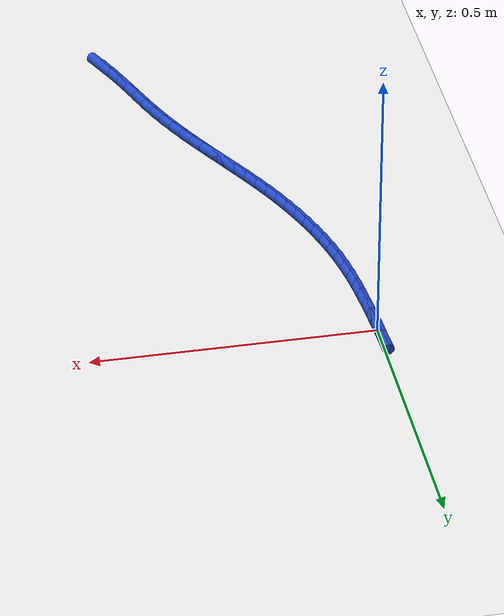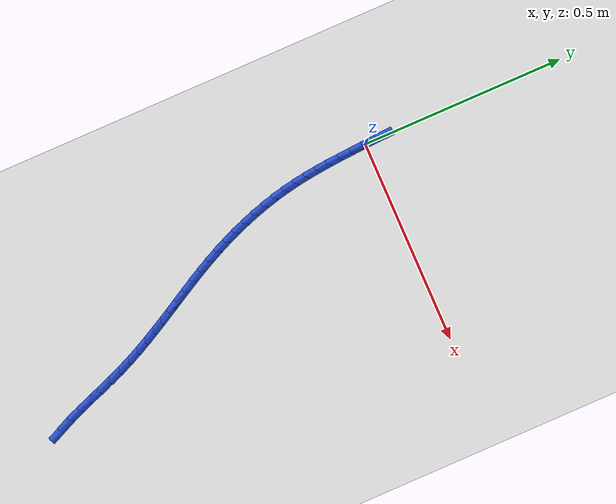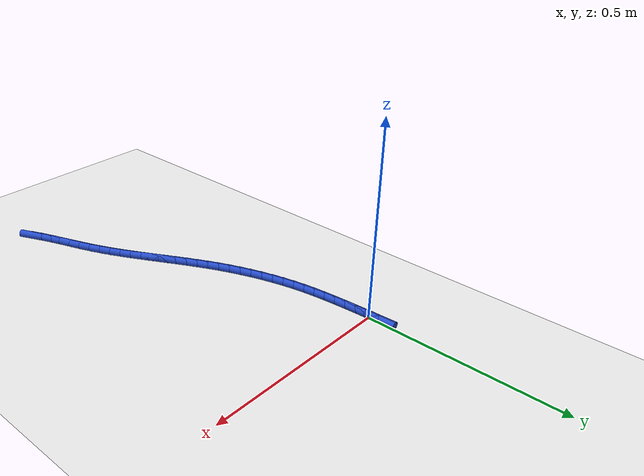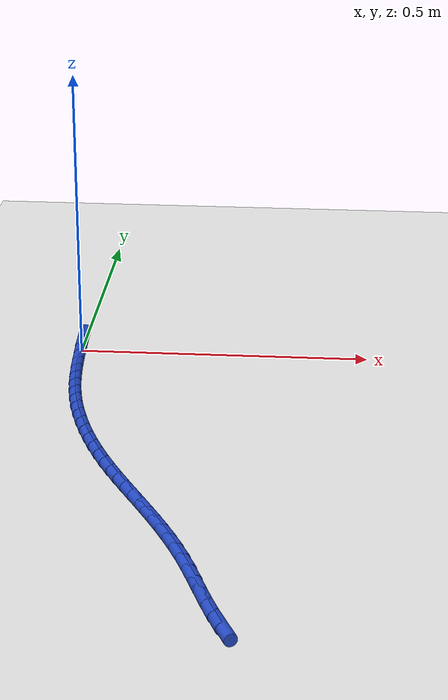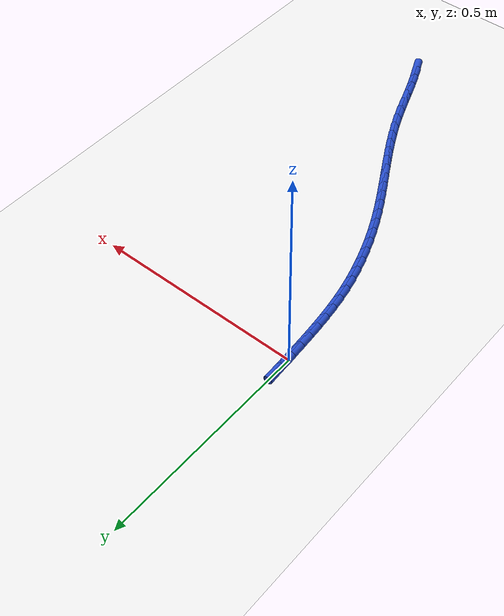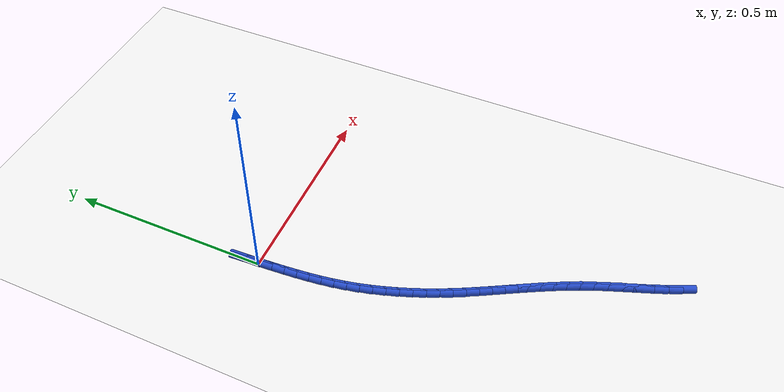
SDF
<sdf version="1.6">
 <world name="default">
  <model name="ground_plane">
   <static>1</static>
   <link name="link">
    <collision name="collision">
     <geometry><plane><normal>0 0 1</normal><size>100 100</size></plane></geometry>
     <surface><friction><ode><mu>100</mu><mu2>50</mu2></ode></friction></surface>
    </collision>
    <visual name="visual">
     <cast_shadows>0</cast_shadows>
     <geometry><plane><normal>0 0 1</normal><size>100 100</size></plane></geometry>
     <material>
      <script><uri>file://media/materials/scripts/gazebo.material</uri><name>Gazebo/WhiteGlow</name></script>
     </material>
    </visual>
   </link>
  </model>
  <model name="line">
   <link name="link_0">
    <pose>1.6479873021779667e-17 -1.3877787807814457e-17 0.01 0 1.57 -1.5169289037299356</pose>
    <collision name="collision">
     <geometry><cylinder><radius>0.01</radius><length>0.08</length></cylinder></geometry>
    </collision>
    <visual name="visual">
     <material>
      <script><name>Gazebo/Blue</name><uri>file://media/materials/scripts/gazebo.material</uri></script>
     </material>
     <geometry><cylinder><radius>0.01</radius><length>0.08</length></cylinder></geometry>
    </visual>
   </link>
   <link name="link_1">
    <pose>-0.0017081246326185085 0.03167911255385943 0.01 0 1.57 -1.5366417405871349</pose>
    <collision name="collision">
     <geometry><cylinder><radius>0.01</radius><length>0.08</length></cylinder></geometry>
    </collision>
    <visual name="visual">
     <material>
      <script><name>Gazebo/Blue</name><uri>file://media/materials/scripts/gazebo.material</uri></script>
     </material>
     <geometry><cylinder><radius>0.01</radius><length>0.08</length></cylinder></geometry>
    </visual>
   </link>
   <link name="link_258">
    <pose>0.3282250796062322 -0.9181112037731878 0.01 0 1.57 -1.1462513492735864</pose>
    <collision name="collision">
     <geometry><cylinder><radius>0.01</radius><length>0.08</length></cylinder></geometry>
    </collision>
    <visual name="visual">
     <material>
      <script><name>Gazebo/Blue</name><uri>file://media/materials/scripts/gazebo.material</uri></script>
     </material>
     <geometry><cylinder><radius>0.01</radius><length>0.08</length></cylinder></geometry>
    </visual>
   </link>
   <link name="link_259">
    <pose>0.31523423611256085 -0.8893726274492675 0.01 0 1.57 -1.1841315422363174</pose>
    <collision name="collision">
     <geometry><cylinder><radius>0.01</radius><length>0.08</length></cylinder></geometry>
    </collision>
    <visual name="visual">
     <material>
      <script><name>Gazebo/Blue</name><uri>file://media/materials/scripts/gazebo.material</uri></script>
     </material>
     <geometry><cylinder><radius>0.01</radius><length>0.08</length></cylinder></geometry>
    </visual>
   </link>
   <link name="link_260">
    <pose>0.30305319556781624 -0.8594556509959788 0.01 0 1.57 -1.2065340801904139</pose>
    <collision name="collision">
     <geometry><cylinder><radius>0.01</radius><length>0.08</length></cylinder></geometry>
    </collision>
    <visual name="visual">
     <material>
      <script><name>Gazebo/Blue</name><uri>file://media/materials/scripts/gazebo.material</uri></script>
     </material>
     <geometry><cylinder><radius>0.01</radius><length>0.08</length></cylinder></geometry>
    </visual>
   </link>
   <link name="link_261">
    <pose>0.29136741081540224 -0.828806568265239 0.01 0 1.57 -1.2147351950602387</pose>
    <collision name="collision">
     <geometry><cylinder><radius>0.01</radius><length>0.08</length></cylinder></geometry>
    </collision>
    <visual name="visual">
     <material>
      <script><name>Gazebo/Blue</name><uri>file://media/materials/scripts/gazebo.material</uri></script>
     </material>
     <geometry><cylinder><radius>0.01</radius><length>0.08</length></cylinder></geometry>
    </visual>
   </link>
   <link name="link_262">
    <pose>0.2798623346987227 -0.7978716731089661 0.01 0 1.57 -1.2092222411758444</pose>
    <collision name="collision">
     <geometry><cylinder><radius>0.01</radius><length>0.08</length></cylinder></geometry>
    </collision>
    <visual name="visual">
     <material>
      <script><name>Gazebo/Blue</name><uri>file://media/materials/scripts/gazebo.material</uri></script>
     </material>
     <geometry><cylinder><radius>0.01</radius><length>0.08</length></cylinder></geometry>
    </visual>
   </link>
   <link name="link_263">
    <pose>0.26822342006118155 -0.7670972593790777 0.01 0 1.57 -1.1897139789515683</pose>
    <collision name="collision">
     <geometry><cylinder><radius>0.01</radius><length>0.08</length></cylinder></geometry>
    </collision>
    <visual name="visual">
     <material>
      <script><name>Gazebo/Blue</name><uri>file://media/materials/scripts/gazebo.material</uri></script>
     </material>
     <geometry><cylinder><radius>0.01</radius><length>0.08</length></cylinder></geometry>
    </visual>
   </link>
   <link name="link_264">
    <pose>0.256136174693886 -0.7369295471641016 0.01 0 1.57 -1.1594302251223996</pose>
    <collision name="collision">
     <geometry><cylinder><radius>0.01</radius><length>0.08</length></cylinder></geometry>
    </collision>
    <visual name="visual">
     <material>
      <script><name>Gazebo/Blue</name><uri>file://media/materials/scripts/gazebo.material</uri></script>
     </material>
     <geometry><cylinder><radius>0.01</radius><length>0.08</length></cylinder></geometry>
    </visual>
   </link>
   <link name="link_265">
    <pose>0.24337979485086572 -0.707688986444531 0.01 0 1.57 -1.1307475955385966</pose>
    <collision name="collision">
     <geometry><cylinder><radius>0.01</radius><length>0.08</length></cylinder></geometry>
    </collision>
    <visual name="visual">
     <material>
      <script><name>Gazebo/Blue</name><uri>file://media/materials/scripts/gazebo.material</uri></script>
     </material>
     <geometry><cylinder><radius>0.01</radius><length>0.08</length></cylinder></geometry>
    </visual>
   </link>
   <link name="link_266">
    <pose>0.2300190721531373 -0.6793126357026876 0.01 0 1.57 -1.1065091310704276</pose>
    <collision name="collision">
     <geometry><cylinder><radius>0.01</radius><length>0.08</length></cylinder></geometry>
    </collision>
    <visual name="visual">
     <material>
      <script><name>Gazebo/Blue</name><uri>file://media/materials/scripts/gazebo.material</uri></script>
     </material>
     <geometry><cylinder><radius>0.01</radius><length>0.08</length></cylinder></geometry>
    </visual>
   </link>
   <link name="link_267">
    <pose>0.21617302327738278 -0.6516647601345464 0.01 0 1.57 -1.0871056050452765</pose>
    <collision name="collision">
     <geometry><cylinder><radius>0.01</radius><length>0.08</length></cylinder></geometry>
    </collision>
    <visual name="visual">
     <material>
      <script><name>Gazebo/Blue</name><uri>file://media/materials/scripts/gazebo.material</uri></script>
     </material>
     <geometry><cylinder><radius>0.01</radius><length>0.08</length></cylinder></geometry>
    </visual>
   </link>
   <link name="link_268">
    <pose>0.20196066490028375 -0.6246096249360819 0.01 0 1.57 -1.0728536699956144</pose>
    <collision name="collision">
     <geometry><cylinder><radius>0.01</radius><length>0.08</length></cylinder></geometry>
    </collision>
    <visual name="visual">
     <material>
      <script><name>Gazebo/Blue</name><uri>file://media/materials/scripts/gazebo.material</uri></script>
     </material>
     <geometry><cylinder><radius>0.01</radius><length>0.08</length></cylinder></geometry>
    </visual>
   </link>
   <link name="link_269">
    <pose>0.18750101369852176 -0.5980114953032684 0.01 0 1.57 -1.0639982063179996</pose>
    <collision name="collision">
     <geometry><cylinder><radius>0.01</radius><length>0.08</length></cylinder></geometry>
    </collision>
    <visual name="visual">
     <material>
      <script><name>Gazebo/Blue</name><uri>file://media/materials/scripts/gazebo.material</uri></script>
     </material>
     <geometry><cylinder><radius>0.01</radius><length>0.08</length></cylinder></geometry>
    </visual>
   </link>
   <link name="link_270">
    <pose>0.17291308634877847 -0.5717346364320801 0.01 0 1.57 -1.0607152339859003</pose>
    <collision name="collision">
     <geometry><cylinder><radius>0.01</radius><length>0.08</length></cylinder></geometry>
    </collision>
    <visual name="visual">
     <material>
      <script><name>Gazebo/Blue</name><uri>file://media/materials/scripts/gazebo.material</uri></script>
     </material>
     <geometry><cylinder><radius>0.01</radius><length>0.08</length></cylinder></geometry>
    </visual>
   </link>
   <link name="link_271">
    <pose>0.15831589952773542 -0.5456433135184912 0.01 0 1.57 -1.0631135610440328</pose>
    <collision name="collision">
     <geometry><cylinder><radius>0.01</radius><length>0.08</length></cylinder></geometry>
    </collision>
    <visual name="visual">
     <material>
      <script><name>Gazebo/Blue</name><uri>file://media/materials/scripts/gazebo.material</uri></script>
     </material>
     <geometry><cylinder><radius>0.01</radius><length>0.08</length></cylinder></geometry>
    </visual>
   </link>
   <link name="link_272">
    <pose>0.14382846991207413 -0.519601791758476 0.01 0 1.57 -1.0712338127714056</pose>
    <collision name="collision">
     <geometry><cylinder><radius>0.01</radius><length>0.08</length></cylinder></geometry>
    </collision>
    <visual name="visual">
     <material>
      <script><name>Gazebo/Blue</name><uri>file://media/materials/scripts/gazebo.material</uri></script>
     </material>
     <geometry><cylinder><radius>0.01</radius><length>0.08</length></cylinder></geometry>
    </visual>
   </link>
   <link name="link_273">
    <pose>0.12956981417847627 -0.4934743363480087 0.01 0 1.57 -1.0850441352818692</pose>
    <collision name="collision">
     <geometry><cylinder><radius>0.01</radius><length>0.08</length></cylinder></geometry>
    </collision>
    <visual name="visual">
     <material>
      <script><name>Gazebo/Blue</name><uri>file://media/materials/scripts/gazebo.material</uri></script>
     </material>
     <geometry><cylinder><radius>0.01</radius><length>0.08</length></cylinder></geometry>
    </visual>
   </link>
   <link name="link_274">
    <pose>0.11565894900362345 -0.46712521248306366 0.01 0 1.57 -1.1044326520990866</pose>
    <collision name="collision">
     <geometry><cylinder><radius>0.01</radius><length>0.08</length></cylinder></geometry>
    </collision>
    <visual name="visual">
     <material>
      <script><name>Gazebo/Blue</name><uri>file://media/materials/scripts/gazebo.material</uri></script>
     </material>
     <geometry><cylinder><radius>0.01</radius><length>0.08</length></cylinder></geometry>
    </visual>
   </link>
   <link name="link_275">
    <pose>0.10221489106419714 -0.4404186853596151 0.01 0 1.57 -1.1291866936423498</pose>
    <collision name="collision">
     <geometry><cylinder><radius>0.01</radius><length>0.08</length></cylinder></geometry>
    </collision>
    <visual name="visual">
     <material>
      <script><name>Gazebo/Blue</name><uri>file://media/materials/scripts/gazebo.material</uri></script>
     </material>
     <geometry><cylinder><radius>0.01</radius><length>0.08</length></cylinder></geometry>
    </visual>
   </link>
   <link name="link_276">
    <pose>0.08935653941893607 -0.4132195418911985 0.01 0 1.57 -1.1576537412883816</pose>
    <collision name="collision">
     <geometry><cylinder><radius>0.01</radius><length>0.08</length></cylinder></geometry>
    </collision>
    <visual name="visual">
     <material>
      <script><name>Gazebo/Blue</name><uri>file://media/materials/scripts/gazebo.material</uri></script>
     </material>
     <geometry><cylinder><radius>0.01</radius><length>0.08</length></cylinder></geometry>
    </visual>
   </link>
   <link name="link_277">
    <pose>0.07718756634688678 -0.38546011037296624 0.01 0 1.57 -1.1871044346756185</pose>
    <collision name="collision">
     <geometry><cylinder><radius>0.01</radius><length>0.08</length></cylinder></geometry>
    </collision>
    <visual name="visual">
     <material>
      <script><name>Gazebo/Blue</name><uri>file://media/materials/scripts/gazebo.material</uri></script>
     </material>
     <geometry><cylinder><radius>0.01</radius><length>0.08</length></cylinder></geometry>
    </visual>
   </link>
   <link name="link_278">
    <pose>0.06578152058280747 -0.35720633801631957 0.01 0 1.57 -1.2174442035276591</pose>
    <collision name="collision">
     <geometry><cylinder><radius>0.01</radius><length>0.08</length></cylinder></geometry>
    </collision>
    <visual name="visual">
     <material>
      <script><name>Gazebo/Blue</name><uri>file://media/materials/scripts/gazebo.material</uri></script>
     </material>
     <geometry><cylinder><radius>0.01</radius><length>0.08</length></cylinder></geometry>
    </visual>
   </link>
   <link name="link_279">
    <pose>0.055208411717374214 -0.32853987060359074 0.01 0 1.57 -1.2489115899255094</pose>
    <collision name="collision">
     <geometry><cylinder><radius>0.01</radius><length>0.08</length></cylinder></geometry>
    </collision>
    <visual name="visual">
     <material>
      <script><name>Gazebo/Blue</name><uri>file://media/materials/scripts/gazebo.material</uri></script>
     </material>
     <geometry><cylinder><radius>0.01</radius><length>0.08</length></cylinder></geometry>
    </visual>
   </link>
   <link name="link_280">
    <pose>0.04553824934126338 -0.2995423539171129 0.01 0 1.57 -1.2817525600050612</pose>
    <collision name="collision">
     <geometry><cylinder><radius>0.01</radius><length>0.08</length></cylinder></geometry>
    </collision>
    <visual name="visual">
     <material>
      <script><name>Gazebo/Blue</name><uri>file://media/materials/scripts/gazebo.material</uri></script>
     </material>
     <geometry><cylinder><radius>0.01</radius><length>0.08</length></cylinder></geometry>
    </visual>
   </link>
   <link name="link_281">
    <pose>0.036841043045150436 -0.2702954337392169 0.01 0 1.57 -1.3162237014641536</pose>
    <collision name="collision">
     <geometry><cylinder><radius>0.01</radius><length>0.08</length></cylinder></geometry>
    </collision>
    <visual name="visual">
     <material>
      <script><name>Gazebo/Blue</name><uri>file://media/materials/scripts/gazebo.material</uri></script>
     </material>
     <geometry><cylinder><radius>0.01</radius><length>0.08</length></cylinder></geometry>
    </visual>
   </link>
   <link name="link_282">
    <pose>0.02918680241971177 -0.24088075585223573 0.01 0 1.57 -1.3525927985092527</pose>
    <collision name="collision">
     <geometry><cylinder><radius>0.01</radius><length>0.08</length></cylinder></geometry>
    </collision>
    <visual name="visual">
     <material>
      <script><name>Gazebo/Blue</name><uri>file://media/materials/scripts/gazebo.material</uri></script>
     </material>
     <geometry><cylinder><radius>0.01</radius><length>0.08</length></cylinder></geometry>
    </visual>
   </link>
   <link name="link_283">
    <pose>0.02264546778092006 -0.21137991958449184 0.01 0 1.57 -1.3895894006379552</pose>
    <collision name="collision">
     <geometry><cylinder><radius>0.01</radius><length>0.08</length></cylinder></geometry>
    </collision>
    <visual name="visual">
     <material>
      <script><name>Gazebo/Blue</name><uri>file://media/materials/scripts/gazebo.material</uri></script>
     </material>
     <geometry><cylinder><radius>0.01</radius><length>0.08</length></cylinder></geometry>
    </visual>
   </link>
   <link name="link_284">
    <pose>0.01723294848897946 -0.18183829235812476 0.01 0 1.57 -1.4228037551634938</pose>
    <collision name="collision">
     <geometry><cylinder><radius>0.01</radius><length>0.08</length></cylinder></geometry>
    </collision>
    <visual name="visual">
     <material>
      <script><name>Gazebo/Blue</name><uri>file://media/materials/scripts/gazebo.material</uri></script>
     </material>
     <geometry><cylinder><radius>0.01</radius><length>0.08</length></cylinder></geometry>
    </visual>
   </link>
   <link name="link_285">
    <pose>0.012814420433541331 -0.15220016322480975 0.01 0 1.57 -1.451086252654469</pose>
    <collision name="collision">
     <geometry><cylinder><radius>0.01</radius><length>0.08</length></cylinder></geometry>
    </collision>
    <visual name="visual">
     <material>
      <script><name>Gazebo/Blue</name><uri>file://media/materials/scripts/gazebo.material</uri></script>
     </material>
     <geometry><cylinder><radius>0.01</radius><length>0.08</length></cylinder></geometry>
    </visual>
   </link>
   <link name="link_286">
    <pose>0.009228979365923177 -0.12239233250014635 0.01 0 1.57 -1.4741536586264898</pose>
    <collision name="collision">
     <geometry><cylinder><radius>0.01</radius><length>0.08</length></cylinder></geometry>
    </collision>
    <visual name="visual">
     <material>
      <script><name>Gazebo/Blue</name><uri>file://media/materials/scripts/gazebo.material</uri></script>
     </material>
     <geometry><cylinder><radius>0.01</radius><length>0.08</length></cylinder></geometry>
    </visual>
   </link>
   <link name="link_287">
    <pose>0.006315721037442479 -0.09234160049973412 0.01 0 1.57 -1.4918618808336903</pose>
    <collision name="collision">
     <geometry><cylinder><radius>0.01</radius><length>0.08</length></cylinder></geometry>
    </collision>
    <visual name="visual">
     <material>
      <script><name>Gazebo/Blue</name><uri>file://media/materials/scripts/gazebo.material</uri></script>
     </material>
     <geometry><cylinder><radius>0.01</radius><length>0.08</length></cylinder></geometry>
    </visual>
   </link>
   <link name="link_288">
    <pose>0.003913741199416731 -0.06197476753917265 0.01 0 1.57 -1.504189426320282</pose>
    <collision name="collision">
     <geometry><cylinder><radius>0.01</radius><length>0.08</length></cylinder></geometry>
    </collision>
    <visual name="visual">
     <material>
      <script><name>Gazebo/Blue</name><uri>file://media/materials/scripts/gazebo.material</uri></script>
     </material>
     <geometry><cylinder><radius>0.01</radius><length>0.08</length></cylinder></geometry>
    </visual>
   </link>
   <link name="link_289">
    <pose>0.0018621356031634192 -0.031218633934061515 0.01 0 1.57 -1.5112187080768695</pose>
    <collision name="collision">
     <geometry><cylinder><radius>0.01</radius><length>0.08</length></cylinder></geometry>
    </collision>
    <visual name="visual">
     <material>
      <script><name>Gazebo/Blue</name><uri>file://media/materials/scripts/gazebo.material</uri></script>
     </material>
     <geometry><cylinder><radius>0.01</radius><length>0.08</length></cylinder></geometry>
    </visual>
   </link>
   <link name="link_290">
    <pose>3.2959746043559335e-17 -3.0531133177191805e-16 0.01 0 1.57 -1.5131180233516481</pose>
    <collision name="collision">
     <geometry><cylinder><radius>0.01</radius><length>0.08</length></cylinder></geometry>
    </collision>
    <visual name="visual">
     <material>
      <script><name>Gazebo/Blue</name><uri>file://media/materials/scripts/gazebo.material</uri></script>
     </material>
     <geometry><cylinder><radius>0.01</radius><length>0.08</length></cylinder></geometry>
    </visual>
   </link>
   <link name="link_291">
    <pose>-0.0018335698587558771 0.0317543339474104 0.01 0 1.57 -1.5101257622586812</pose>
    <collision name="collision">
     <geometry><cylinder><radius>0.01</radius><length>0.08</length></cylinder></geometry>
    </collision>
    <visual name="visual">
     <material>
      <script><name>Gazebo/Blue</name><uri>file://media/materials/scripts/gazebo.material</uri></script>
     </material>
     <geometry><cylinder><radius>0.01</radius><length>0.08</length></cylinder></geometry>
    </visual>
   </link>
  </model>
 </world>
</sdf>
